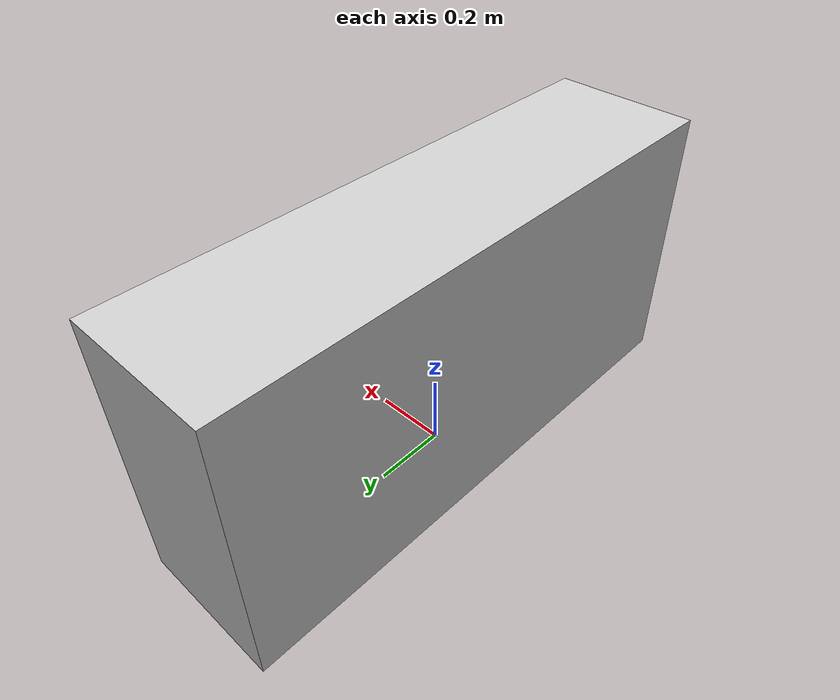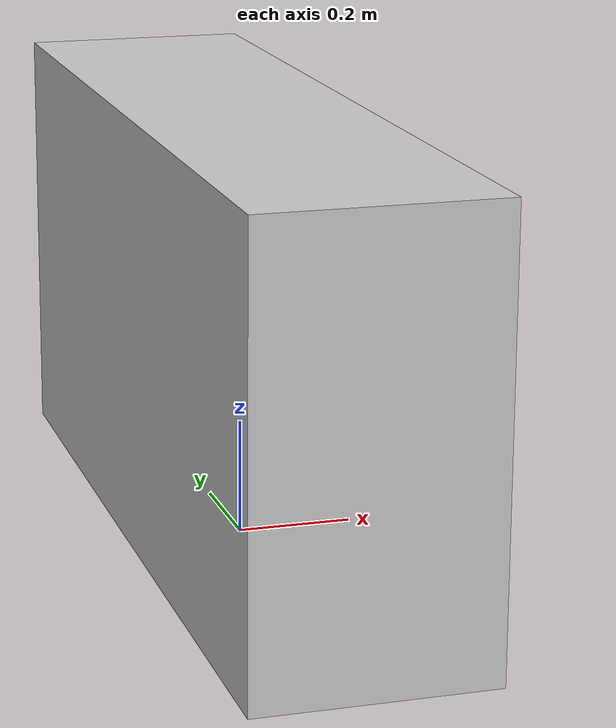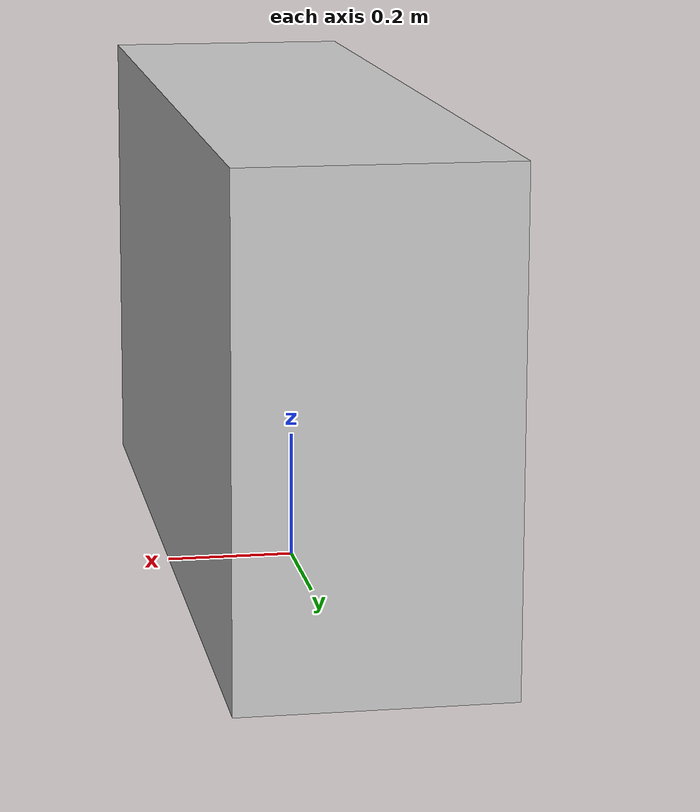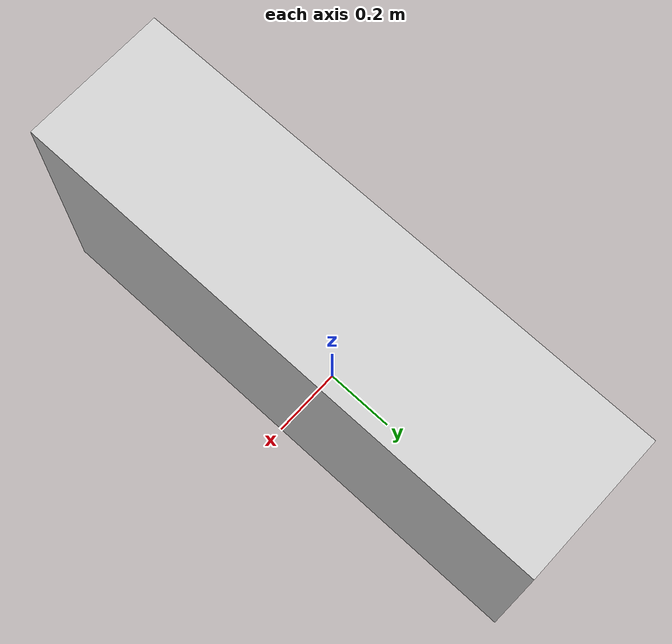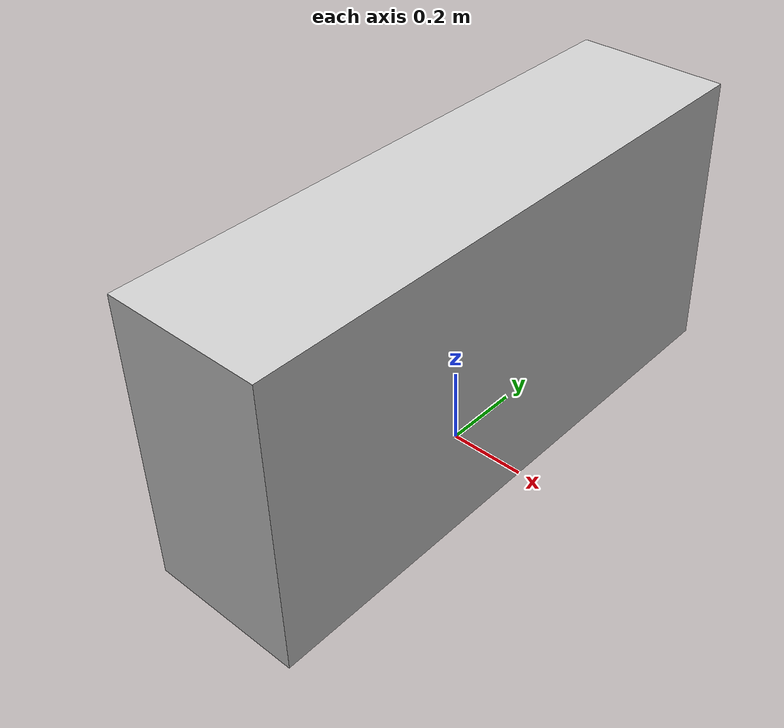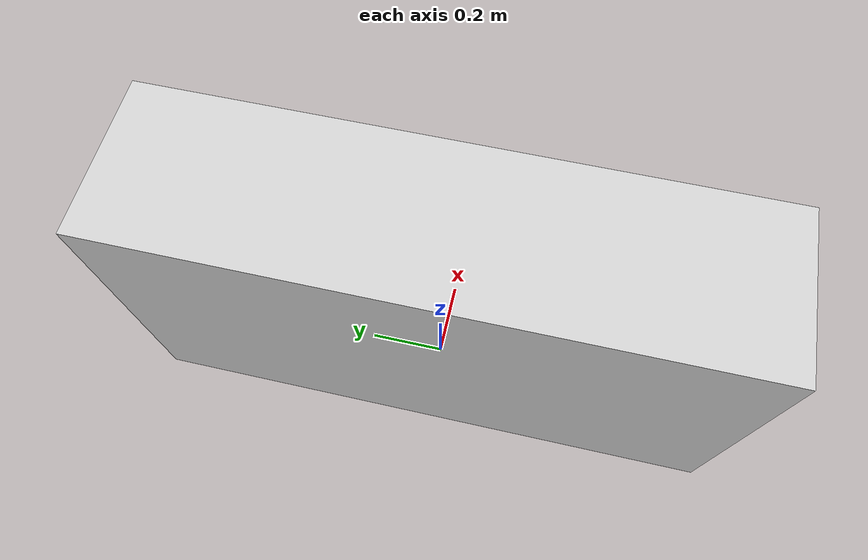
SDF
<?xml version="1.0" ?>
<sdf version="1.6">
  <model name="ddw/table">
    <link name="1">
      <collision name="1">
        <geometry>
          <box>
            <size>0.4 1.5 0.75</size>
          </box>
        </geometry>
        <name>1</name>
      </collision>
      <visual name="1">
        <geometry>
          <box>
            <size>0.4 1.5 0.75</size>
          </box>
        </geometry>
        <material>
          <ambient>0.8 0.8 0.8 1</ambient>
        </material>
        <name>1</name>
      </visual>
      <pose>0 0 0.375 0 0 0</pose>
      <name>1</name>
    </link>
    <link name="in_front_of">
      <virtual_volume name="in_front_of">
        <geometry>
          <box>
            <size>0.5 1.0 0.01</size>
          </box>
        </geometry>
        <pose>0.5 0.0 0.005 0 0 0</pose>
        <name>in_front_of</name>
      </virtual_volume>
      <name>in_front_of</name>
    </link>
    <link name="on_top_of">
      <virtual_volume name="on_top_of">
        <geometry>
          <box>
            <size>0.38 1.48 0.3</size>
          </box>
        </geometry>
        <pose>0.0 0.0 0.92 0 0 0</pose>
        <name>on_top_of</name>
      </virtual_volume>
      <name>on_top_of</name>
    </link>
    <static>true</static>
    <name>ddw/table</name>
  </model>
</sdf>
